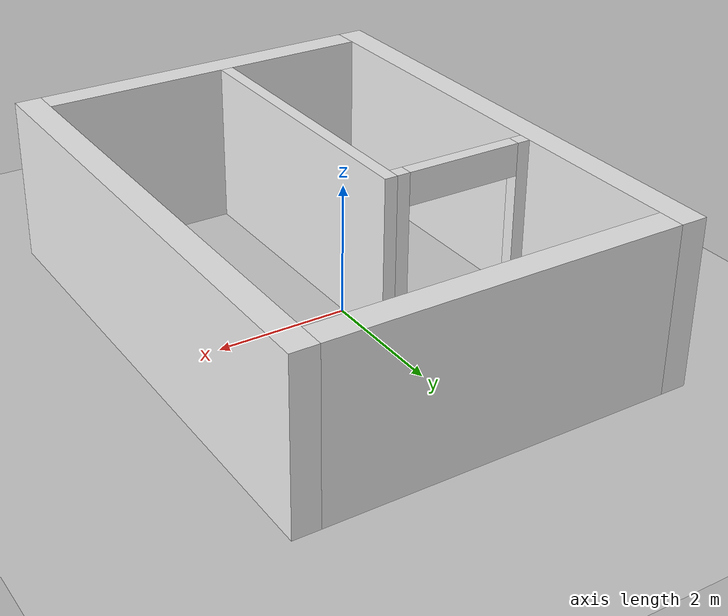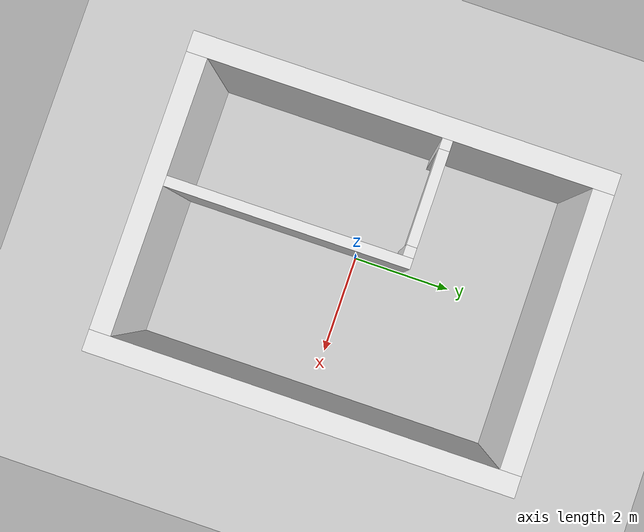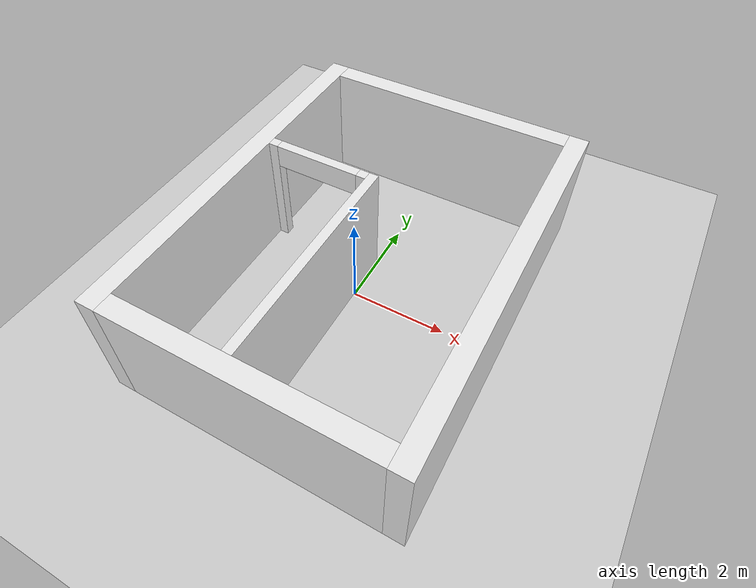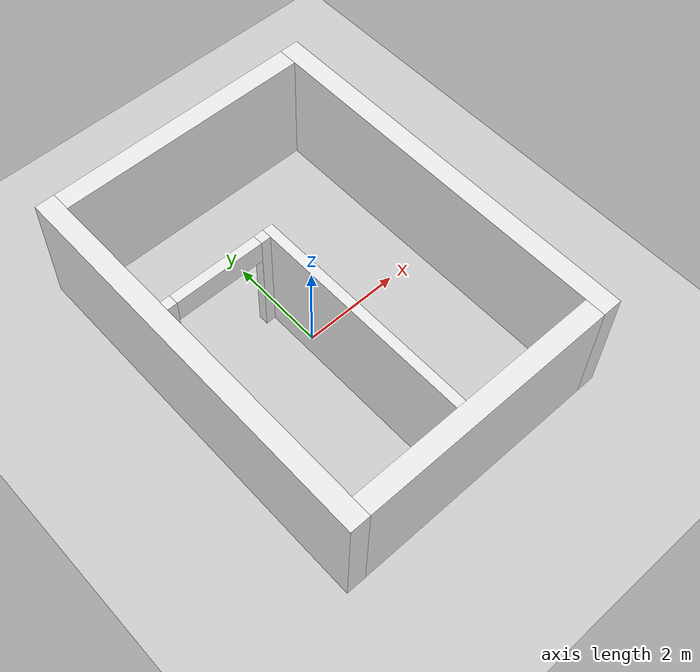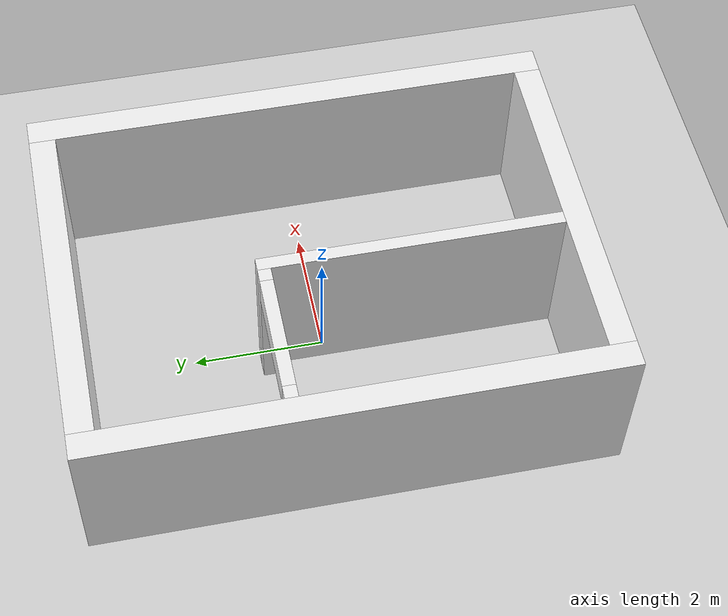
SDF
<sdf version="1.7">
 <world name="default">
  <light name="sun" type="directional">
   <pose>0 0 10 0 -0 0</pose>
   <diffuse>0.8 0.8 0.8 1</diffuse>
   <specular>0.2 0.2 0.2 1</specular>
   <attenuation>
    <range>1000</range>
    <constant>0.9</constant>
    <linear>0.01</linear>
    <quadratic>0.001</quadratic>
   </attenuation>
   <direction>-0.5 0.1 -0.9</direction>
   <spot><inner_angle>0</inner_angle><outer_angle>0</outer_angle><falloff>0</falloff></spot>
  </light>
  <model name="ground_plane">
   <static>1</static>
   <link name="link">
    <collision name="collision">
     <geometry><plane><normal>0 0 1</normal><size>100 100</size></plane></geometry>
     <surface><friction><ode><mu>100</mu><mu2>50</mu2></ode></friction></surface>
    </collision>
    <visual name="visual">
     <cast_shadows>0</cast_shadows>
     <geometry><plane><normal>0 0 1</normal><size>100 100</size></plane></geometry>
     <material>
      <script><uri>file://media/materials/scripts/gazebo.material</uri><name>Gazebo/Grey</name></script>
     </material>
    </visual>
   </link>
  </model>
  <gravity>0 0 -9.8</gravity>
  <magnetic_field>6e-06 2.3e-05 -4.2e-05</magnetic_field>
  <atmosphere type="adiabatic"/>
  <physics type="ode">
   <max_step_size>0.001</max_step_size>
   <real_time_factor>1</real_time_factor>
   <real_time_update_rate>1000</real_time_update_rate>
  </physics>
  <scene><ambient>0.4 0.4 0.4 1</ambient><background>0.7 0.7 0.7 1</background><shadows>1</shadows></scene>
  <audio><device>default</device></audio>
  <spherical_coordinates>
   <surface_model>EARTH_WGS84</surface_model>
   <latitude_deg>0</latitude_deg>
   <longitude_deg>0</longitude_deg>
   <elevation>0</elevation>
   <heading_deg>0</heading_deg>
  </spherical_coordinates>
  <model name="map_v2">
   <pose>-0.019191 -0.005364 0 0 -0 0</pose>
   <link name="Wall_0">
    <pose>-2.6 0 0 0 -0 0</pose>
    <collision name="Wall_0_Collision">
     <pose>0 0 1.25 0 -0 0</pose>
     <geometry><box><size>0.4 8 2.5</size></box></geometry>
    </collision>
    <visual name="Wall_0_Visual">
     <pose>0 0 1.25 0 -0 0</pose>
     <geometry><box><size>0.4 8 2.5</size></box></geometry>
     <material>
      <script><uri>file://media/materials/scripts/gazebo.material</uri><name>Gazebo/White</name></script>
      <ambient>1 1 1 1</ambient>
     </material>
     <meta><layer>0</layer></meta>
    </visual>
   </link>
   <link name="Wall_1">
    <pose>0.2 3.8 0 0 -0 0</pose>
    <collision name="Wall_1_Collision">
     <pose>0 0 1.25 0 -0 0</pose>
     <geometry><box><size>5.2 0.4 2.5</size></box></geometry>
    </collision>
    <visual name="Wall_1_Visual">
     <pose>0 0 1.25 0 -0 0</pose>
     <geometry><box><size>5.2 0.4 2.5</size></box></geometry>
     <material>
      <script><uri>file://media/materials/scripts/gazebo.material</uri><name>Gazebo/White</name></script>
      <ambient>1 1 1 1</ambient>
     </material>
     <meta><layer>0</layer></meta>
    </visual>
   </link>
   <link name="Wall_2">
    <pose>3 0 0 0 -0 0</pose>
    <collision name="Wall_2_Collision">
     <pose>0 0 1.25 0 -0 0</pose>
     <geometry><box><size>0.4 8 2.5</size></box></geometry>
    </collision>
    <visual name="Wall_2_Visual">
     <pose>0 0 1.25 0 -0 0</pose>
     <geometry><box><size>0.4 8 2.5</size></box></geometry>
     <material>
      <script><uri>file://media/materials/scripts/gazebo.material</uri><name>Gazebo/White</name></script>
      <ambient>1 1 1 1</ambient>
     </material>
     <meta><layer>0</layer></meta>
    </visual>
   </link>
   <link name="Wall_3">
    <pose>0.2 -3.8 0 0 -0 0</pose>
    <collision name="Wall_3_Collision">
     <pose>0 0 1.25 0 -0 0</pose>
     <geometry><box><size>5.2 0.4 2.5</size></box></geometry>
    </collision>
    <visual name="Wall_3_Visual">
     <pose>0 0 1.25 0 -0 0</pose>
     <geometry><box><size>5.2 0.4 2.5</size></box></geometry>
     <material>
      <script><uri>file://media/materials/scripts/gazebo.material</uri><name>Gazebo/White</name></script>
      <ambient>1 1 1 1</ambient>
     </material>
     <meta><layer>0</layer></meta>
    </visual>
   </link>
   <link name="Wall_4">
    <pose>-0.1 -1.3 0 0 -0 0</pose>
    <collision name="Wall_4_Collision">
     <pose>0 0 1.25 0 -0 0</pose>
     <geometry><box><size>0.2 4.6 2.5</size></box></geometry>
    </collision>
    <visual name="Wall_4_Visual">
     <pose>0 0 1.25 0 -0 0</pose>
     <geometry><box><size>0.2 4.6 2.5</size></box></geometry>
     <material>
      <script><uri>file://media/materials/scripts/gazebo.material</uri><name>Gazebo/White</name></script>
      <ambient>1 1 1 1</ambient>
     </material>
     <meta><layer>0</layer></meta>
    </visual>
   </link>
   <link name="Wall_5">
    <pose>-0.3 0.9 0 0 -0 0</pose>
    <collision name="Wall_5_Collision">
     <pose>0 0 1.25 0 -0 0</pose>
     <geometry><box><size>0.2 0.2 2.5</size></box></geometry>
    </collision>
    <visual name="Wall_5_Visual">
     <pose>0 0 1.25 0 -0 0</pose>
     <geometry><box><size>0.2 0.2 2.5</size></box></geometry>
     <material>
      <script><uri>file://media/materials/scripts/gazebo.material</uri><name>Gazebo/White</name></script>
      <ambient>1 1 1 1</ambient>
     </material>
     <meta><layer>0</layer></meta>
    </visual>
   </link>
   <link name="Wall_6">
    <pose>-2.3 0.9 0 0 -0 0</pose>
    <collision name="Wall_6_Collision">
     <pose>0 0 1.25 0 -0 0</pose>
     <geometry><box><size>0.2 0.2 2.5</size></box></geometry>
    </collision>
    <visual name="Wall_6_Visual">
     <pose>0 0 1.25 0 -0 0</pose>
     <geometry><box><size>0.2 0.2 2.5</size></box></geometry>
     <material>
      <script><uri>file://media/materials/scripts/gazebo.material</uri><name>Gazebo/White</name></script>
      <ambient>1 1 1 1</ambient>
     </material>
     <meta><layer>0</layer></meta>
    </visual>
   </link>
   <link name="Doorway_0">
    <pose>-1.3 0.9 0 0 -0 0</pose>
    <collision name="Doorway_0_Collision">
     <pose>0 0 2.25 0 -0 0</pose>
     <geometry><box><size>1.8 0.2 0.5</size></box></geometry>
    </collision>
    <visual name="Doorway_0_Visual">
     <pose>0 0 2.25 0 -0 0</pose>
     <geometry><box><size>1.8 0.2 0.5</size></box></geometry>
     <material>
      <script><uri>file://media/materials/scripts/gazebo.material</uri><name>Gazebo/White</name></script>
      <ambient>1 1 1 1</ambient>
     </material>
     <meta><layer>0</layer></meta>
    </visual>
   </link>
   <static>1</static>
  </model>
 </world>
</sdf>
